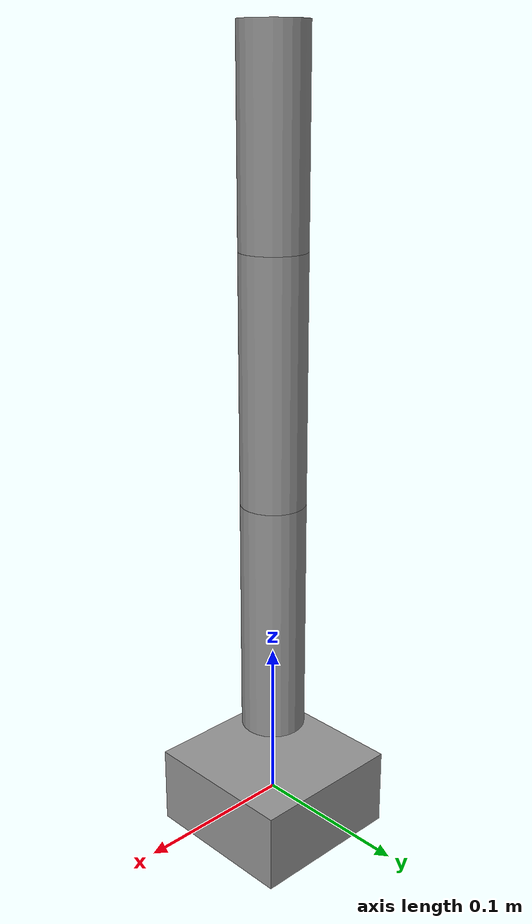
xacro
<?xml version="1.0"?>
<robot xmlns:xacro="http://www.ros.org/wiki/xacro" name="xl430_arm">
    <xacro:arg name="initial_positions_file" default="initial_positions.yaml" />

    <!-- Import xl430_arm urdf file -->
    <xacro:include filename="$(find arm_description)/urdf/arm.urdf.xacro" />

    <!-- Import control_xacro -->
    <xacro:include filename="xl430_arm.ros2_control.xacro" />

    <xacro:xl430_arm_ros2_control name="FakeSystem" initial_positions_file="$(arg initial_positions_file)"/>

</robot>

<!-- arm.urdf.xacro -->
<robot name="xl430_arm" xmlns:xacro="http://www.ros.org/wiki/xacro">

  <!--          WORLD           -->
  <link name="world"/>

  <joint name="world_joint" type="fixed">
    <parent link="world"/>
    <child link="base_link"/>
    <origin xyz="0 0 0" rpy="0 0 0"/>
  </joint>

  <!--        MATERIALS         -->
  <material name="gray">
    <color rgba="0.6 0.6 0.6 1.0"/>
  </material>

  <!--        BASE LINK          -->
  <link name="base_link">
    <visual>
      <geometry>
        <box size="0.1 0.1 0.05"/>
      </geometry>
      <material name="gray"/>
    </visual>

    <collision>
      <geometry>
        <box size="0.1 0.1 0.05"/>
      </geometry>
    </collision>

    <inertial>
      <mass value="1.0"/>
      <inertia ixx="0.01" ixy="0" ixz="0"
               iyy="0.01" iyz="0"
               izz="0.01"/>
    </inertial>
  </link>

  <!--        LINK 1             -->
  <link name="link_1">
    <visual>
      <geometry>
        <cylinder length="0.15" radius="0.02"/>
      </geometry>
      <origin xyz="0 0 0.075"/>
      <material name="gray"/>
    </visual>

    <collision>
      <geometry>
        <cylinder length="0.15" radius="0.02"/>
      </geometry>
      <origin xyz="0 0 0.075"/>
    </collision>

    <inertial>
      <origin xyz="0 0 0.075"/>
      <mass value="0.3"/>
      <inertia ixx="0.001" ixy="0" ixz="0"
               iyy="0.001" iyz="0"
               izz="0.001"/>
    </inertial>
  </link>

  <joint name="joint_1" type="revolute">
    <parent link="base_link"/>
    <child link="link_1"/>
    <origin xyz="0 0 0.05"/>
    <axis xyz="0 0 1"/>
    <limit lower="-3.14159" upper="3.14159" effort="2.0" velocity="2.0"/>
  </joint>

  <!--        LINK 2             -->
  <link name="link_2">
    <visual>
      <geometry>
        <cylinder length="0.15" radius="0.02"/>
      </geometry>
      <origin xyz="0 0 0.075"/>
      <material name="gray"/>
    </visual>

    <collision>
      <geometry>
        <cylinder length="0.15" radius="0.02"/>
      </geometry>
      <origin xyz="0 0 0.075"/>
    </collision>

    <inertial>
      <origin xyz="0 0 0.075"/>
      <mass value="0.25"/>
      <inertia ixx="0.001" ixy="0" ixz="0"
               iyy="0.001" iyz="0"
               izz="0.001"/>
    </inertial>
  </link>

  <joint name="joint_2" type="revolute">
    <parent link="link_1"/>
    <child link="link_2"/>
    <origin xyz="0 0 0.15"/>
    <axis xyz="0 1 0"/>
    <limit lower="-3.14159" upper="3.14159" effort="2.0" velocity="2.0"/>
  </joint>

  <!--        LINK 3             -->
  <link name="link_3">
    <visual>
      <geometry>
        <cylinder length="0.12" radius="0.02"/>
      </geometry>
      <origin xyz="0 0 0.06"/>
      <material name="gray"/>
    </visual>

    <collision>
      <geometry>
        <cylinder length="0.12" radius="0.02"/>
      </geometry>
      <origin xyz="0 0 0.06"/>
    </collision>

    <inertial>
      <origin xyz="0 0 0.06"/>
      <mass value="0.2"/>
      <inertia ixx="0.0008" ixy="0" ixz="0"
               iyy="0.0008" iyz="0"
               izz="0.0008"/>
    </inertial>
  </link>

  <joint name="joint_3" type="revolute">
    <parent link="link_2"/>
    <child link="link_3"/>
    <origin xyz="0 0 0.15"/>
    <axis xyz="0 1 0"/>
    <limit lower="-3.14159" upper="3.14159" effort="2.0" velocity="2.0"/>
  </joint>

  <!--                ROS 2 CONTROL                     -->
  <ros2_control name="DynamixelSystem" type="system">

    <hardware>
      <plugin>dynamixel_hardware_interface/DynamixelHardware</plugin>
      <param name="port_name">/dev/ttyACM0</param>
      <param name="baud_rate">1000000</param>
      <param name="number_of_joints">3</param>
      <param name="number_of_transmissions">3</param>
      <param name="disable_torque_at_init">true</param>
      <!-- Path relative to package share -->
      <param name="dynamixel_model_folder">/param/dxl_model</param>

    </hardware>

    <!-- Joint interfaces -->
    <joint name="joint_1">
      <command_interface name="position"/>
      <state_interface name="position"/>
      <state_interface name="velocity"/>
    </joint>

    <joint name="joint_2">
      <command_interface name="position"/>
      <state_interface name="position"/>
      <state_interface name="velocity"/>
    </joint>

    <joint name="joint_3">
      <command_interface name="position"/>
      <state_interface name="position"/>
      <state_interface name="velocity"/>
    </joint>

    <!-- Transmissions -->
    <transmission name="trans_1">
      <plugin>transmission_interface/SimpleTransmission</plugin>
      <joint name="joint_1" role="joint"/>
      <actuator name="dxl1" role="actuator">
        <command_interface name="position"/>
        <mechanical_reduction>1</mechanical_reduction>
      </actuator>
    </transmission>

    <transmission name="trans_2">
      <plugin>transmission_interface/SimpleTransmission</plugin>
      <joint name="joint_2" role="joint"/>
      <actuator name="dxl2" role="actuator">
        <command_interface name="position"/>
        <mechanical_reduction>1</mechanical_reduction>
      </actuator>
    </transmission>

    <transmission name="trans_3">
      <plugin>transmission_interface/SimpleTransmission</plugin>
      <joint name="joint_3" role="joint"/>
      <actuator name="dxl3" role="actuator">
        <command_interface name="position"/>
        <mechanical_reduction>1</mechanical_reduction>
      </actuator>
    </transmission>

    <!-- Dynamixels -->
    <gpio name="dxl1">
      <param name="type">dxl</param>
      <param name="ID">1</param>
      <command_interface name="Goal Position"/>
      <state_interface name="Present Position"/>
      <state_interface name="Present Velocity"/>
    </gpio>

    <gpio name="dxl2">
      <param name="type">dxl</param>
      <param name="ID">2</param>
      <command_interface name="Goal Position"/>
      <state_interface name="Present Position"/>
      <state_interface name="Present Velocity"/>
    </gpio>

    <gpio name="dxl3">
      <param name="type">dxl</param>
      <param name="ID">3</param>
      <command_interface name="Goal Position"/>
      <state_interface name="Present Position"/>
      <state_interface name="Present Velocity"/>
    </gpio>

  </ros2_control>

</robot>
